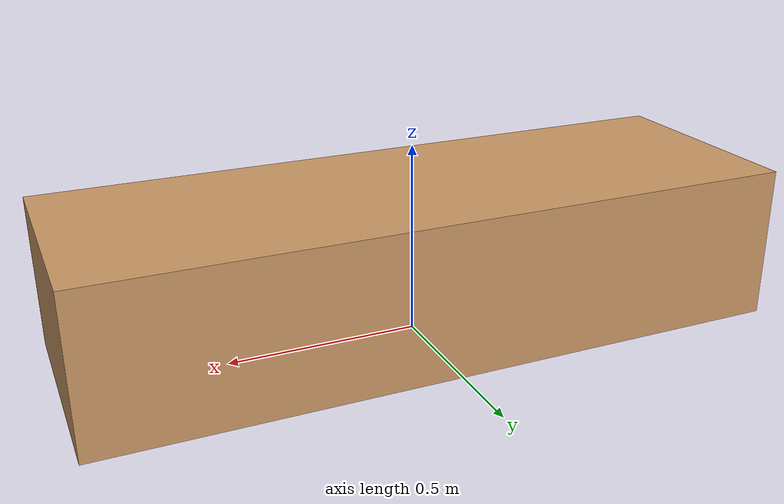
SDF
<?xml version="1.0" ?>
<sdf version="1.5">
  <model name="person_lying_down">
    <static>true</static>
    <link name="link">
      <inertial>
        <pose>0 0 0.2 0 0 0</pose>
        <mass>70.0</mass>
        <inertia>
          <ixx>24.88</ixx>
          <ixy>0</ixy>
          <ixz>0</ixz>
          <iyy>25.73</iyy>
          <iyz>0</iyz>
          <izz>2.48</izz>
        </inertia>
      </inertial>

      <collision name="person_collision">
        <pose>0 0 0.2 0 0 0</pose>
        <geometry>
          <box>
            <size>1.8 0.6 0.4</size>
          </box>
        </geometry>
      </collision>

      <visual name="visual">
        <pose>0 0 0.2 0 0 0</pose>
        <geometry>
          <box>
            <size>1.8 0.6 0.4</size>
          </box>
        </geometry>
        <material>
          <ambient>0.8 0.6 0.4 1</ambient>
          <diffuse>0.8 0.6 0.4 1</diffuse>
          <specular>0.1 0.1 0.1 1</specular>
        </material>
      </visual>
    </link>
  </model>
</sdf>
